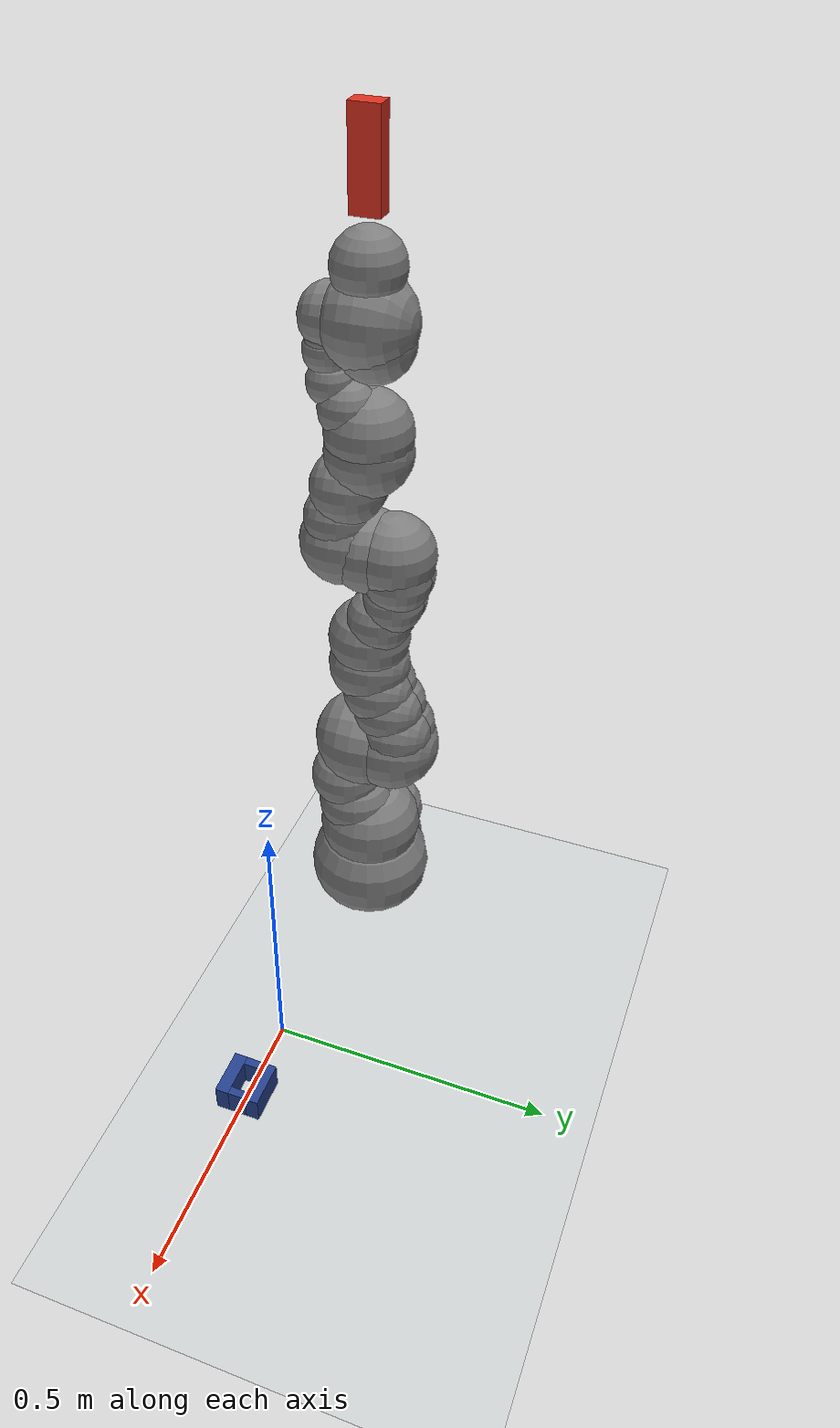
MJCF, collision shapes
<mujoco model="rect_peg_in_hole_iiwa_mesh_proxy_soft">

  <include file="iiwa14_peg.xml"/>

  <statistic center="0.05 0 0.35" extent="1.2"/>

  <visual>
    <global offwidth="1280" offheight="900" azimuth="-120" elevation="-20"/>
    <headlight ambient="0.35 0.35 0.35" diffuse="0.65 0.65 0.65" specular="0.1 0.1 0.1"/>
  </visual>

  <asset>
    <mesh name="rectangular_hole_mesh" file="rectangular_hole.obj"/>

    <texture name="checker" type="2d" builtin="checker"
             width="512" height="512"
             rgb1="0.92 0.92 0.88" rgb2="0.68 0.72 0.76"/>
    <material name="checker_mat" texture="checker" texrepeat="10 10" reflectance="0.15"/>
  </asset>

  <worldbody>
    <light name="key_light" pos="0.35 -0.55 1.0" dir="-0.35 0.55 -1"/>
    <camera name="extern" mode="fixed" pos="0 0 1" fovy="58"/>
    <geom name="floor"
          type="plane"
          pos="0 0 -0.026"
          size="0.8 0.8 0.01"
          contype="0"
          conaffinity="0"
          material="checker_mat"/>

    <body name="hole" pos="0.15 0 0" euler="0 0 1.5707963267948966">
      <geom name="hole_visual"
            type="mesh"
            mesh="rectangular_hole_mesh"
            pos="0 0 0"
            contype="0"
            conaffinity="0"
            rgba="0.68 0.73 0.82 0.35"/>

      <!--
        rectangular_hole.obj bounds:
        - outer half-widths: x=0.04 m, y=0.04 m
        - maximum opening envelope: x=0.0162 m, y=0.0252 m
        - height: z=0.05 m
      -->
      <geom name="hole_proxy_pos_x_collision"
            type="box"
            pos="0.0281 0 0.025"
            size="0.0119 0.04 0.025"
            contype="1"
            conaffinity="1"
            condim="3"
            friction="1.0 0.005 0.0001"
            solref="0.03 1"
            solimp="0 0.9 0.01 0.5 2"
            rgba="0.14 0.25 0.55 0.35"/>
      <geom name="hole_proxy_neg_x_collision"
            type="box"
            pos="-0.0281 0 0.025"
            size="0.0119 0.04 0.025"
            contype="1"
            conaffinity="1"
            condim="3"
            friction="1.0 0.005 0.0001"
            solref="0.03 1"
            solimp="0 0.9 0.01 0.5 2"
            rgba="0.14 0.25 0.55 0.35"/>
      <geom name="hole_proxy_pos_y_collision"
            type="box"
            pos="0 0.0326 0.025"
            size="0.0162 0.0074 0.025"
            contype="1"
            conaffinity="1"
            condim="3"
            friction="1.0 0.005 0.0001"
            solref="0.03 1"
            solimp="0 0.9 0.01 0.5 2"
            rgba="0.14 0.25 0.55 0.35"/>
      <geom name="hole_proxy_neg_y_collision"
            type="box"
            pos="0 -0.0326 0.025"
            size="0.0162 0.0074 0.025"
            contype="1"
            conaffinity="1"
            condim="3"
            friction="1.0 0.005 0.0001"
            solref="0.03 1"
            solimp="0 0.9 0.01 0.5 2"
            rgba="0.14 0.25 0.55 0.35"/>
    </body>
  </worldbody>
</mujoco>

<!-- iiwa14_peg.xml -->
<mujoco model="iiwa14_peg">
  <compiler angle="radian" meshdir="kuka_iiwa_14/meshes" autolimits="true"/>

  <option timestep="0.002"
          solver="Newton"
          iterations="10"
          ls_iterations="50"
          gravity="0 0 0"
          cone="pyramidal"/>

  <custom>
    <numeric data="240" name="max_contact_points"/>
    <numeric data="240" name="max_geom_pairs"/>
  </custom>

  <default>
    <default class="iiwa">
      <material specular="0.5" shininess="0.25"/>
      <joint axis="0 0 1"/>
      <general gaintype="fixed" biastype="affine" gainprm="2000" biasprm="0 -2000 -200"/>
      <default class="joint1">
        <joint range="-2.96706 2.96706"/>
        <general ctrlrange="-2.96706 2.96706"/>
        <default class="joint2">
          <joint range="-2.0944 2.0944"/>
          <general ctrlrange="-2.0944 2.0944"/>
        </default>
      </default>
      <default class="joint3">
        <joint range="-3.05433 3.05433"/>
        <general ctrlrange="-3.05433 3.05433"/>
      </default>
      <default class="visual">
        <geom type="mesh" contype="0" conaffinity="0" group="2" material="gray"/>
      </default>
      <default class="collision">
        <geom group="3" contype="0" conaffinity="0"/>
      </default>
      <site size="0.001" rgba="1 0 0 1" group="4"/>
    </default>
  </default>

  <asset>
    <material class="iiwa" name="gray" rgba="0.4 0.4 0.4 1"/>
    <material class="iiwa" name="light_gray" rgba="0.6 0.6 0.6 1"/>
    <material class="iiwa" name="black" rgba="0 0 0 1"/>
    <material class="iiwa" name="orange" rgba="1 0.423529 0.0392157 1"/>

    <mesh file="link_0.obj"/>
    <mesh file="link_1.obj"/>
    <mesh file="link_2_orange.obj"/>
    <mesh file="link_2_grey.obj"/>
    <mesh file="link_3.obj"/>
    <mesh file="band.obj"/>
    <mesh file="kuka.obj"/>
    <mesh file="link_4_orange.obj"/>
    <mesh file="link_4_grey.obj"/>
    <mesh file="link_5.obj"/>
    <mesh file="link_6_orange.obj"/>
    <mesh file="link_6_grey.obj"/>
    <mesh file="link_7.obj"/>
    <mesh name="rectangular_peg_mesh" file="rectangular_peg.obj"/>
  </asset>

  <worldbody>
    <light name="top" pos="0 0 2" mode="trackcom"/>
    <body name="base" childclass="iiwa" pos="-0.45 0 0">
      <inertial mass="5" pos="-0.1 0 0.07" diaginertia="0.05 0.06 0.03"/>
      <geom class="visual" mesh="link_0"/>
      <geom class="collision" size="0.12" pos="0 0 0.03"/>
      <geom class="collision" size="0.08" pos="-0.08 0 0.103"/>
      <geom class="collision" size="0.08" pos="-0.08 0 0.04"/>
      <geom class="collision" size="0.1" pos="0 0 0.14"/>
      <body name="link1" pos="0 0 0.1575">
        <inertial mass="5.76" pos="0 -0.03 0.12" diaginertia="0.0333 0.033 0.0123"/>
        <joint name="joint1" class="joint1"/>
        <geom class="visual" mesh="link_1"/>
        <geom class="collision" size="0.08" pos="0 0 -0.0005"/>
        <geom class="collision" size="0.075" pos="0.01 -0.025 0.0425"/>
        <geom class="collision" size="0.075" pos="-0.01 -0.025 0.0425"/>
        <geom class="collision" size="0.07" pos="0.01 -0.045 0.1025"/>
        <geom class="collision" size="0.07" pos="-0.01 -0.045 0.1025"/>
        <body name="link2" pos="0 0 0.2025" quat="0 0 1 1">
          <inertial mass="6.35" pos="0.0003 0.059 0.042" diaginertia="0.0305 0.0304 0.011" quat="0 0 1 1"/>
          <joint name="joint2" class="joint2"/>
          <geom class="visual" material="orange" mesh="link_2_orange"/>
          <geom class="visual" mesh="link_2_grey"/>
          <geom class="collision" size="0.095" pos="0 0 -0.01"/>
          <geom class="collision" size="0.09" pos="0 0 0.045"/>
          <geom class="collision" size="0.07" pos="-0.01 0.04 0.054"/>
          <geom class="collision" size="0.065" pos="-0.01 0.09 0.04"/>
          <geom class="collision" size="0.065" pos="-0.01 0.13 0.02"/>
          <geom class="collision" size="0.07" pos="0.01 0.04 0.054"/>
          <geom class="collision" size="0.065" pos="0.01 0.09 0.04"/>
          <geom class="collision" size="0.065" pos="0.01 0.13 0.02"/>
          <geom class="collision" size="0.075" pos="0 0.18 0"/>
          <body name="link3" pos="0 0.2045 0" quat="0 0 1 1">
            <inertial mass="3.5" pos="0 0.03 0.13" diaginertia="0.025 0.0238 0.0076"/>
            <joint name="joint3" class="joint1"/>
            <geom class="visual" mesh="link_3"/>
            <geom class="visual" material="light_gray" mesh="band"/>
            <geom class="visual" material="black" mesh="kuka"/>
            <geom class="collision" size="0.075" pos="0 0 0.0355"/>
            <geom class="collision" size="0.06" pos="0.01 0.023 0.0855"/>
            <geom class="collision" size="0.055" pos="0.01 0.048 0.1255"/>
            <geom class="collision" size="0.06" pos="0.01 0.056 0.1755"/>
            <geom class="collision" size="0.06" pos="-0.01 0.023 0.0855"/>
            <geom class="collision" size="0.055" pos="-0.01 0.048 0.1255"/>
            <geom class="collision" size="0.06" pos="-0.01 0.056 0.1755"/>
            <geom class="collision" size="0.075" pos="0 0.045 0.2155"/>
            <geom class="collision" size="0.075" pos="0 0 0.2155"/>
            <body name="link4" pos="0 0 0.2155" quat="1 1 0 0">
              <inertial mass="3.5" pos="0 0.067 0.034" diaginertia="0.017 0.0164 0.006" quat="1 1 0 0"/>
              <joint name="joint4" class="joint2"/>
              <geom class="visual" material="orange" mesh="link_4_orange"/>
              <geom class="visual" mesh="link_4_grey"/>
              <geom class="collision" size="0.078" pos="0 0.01 0.046"/>
              <geom class="collision" size="0.06" pos="0.01 0.06 0.052"/>
              <geom class="collision" size="0.065" pos="0.01 0.12 0.034"/>
              <geom class="collision" size="0.06" pos="-0.01 0.06 0.052"/>
              <geom class="collision" size="0.065" pos="-0.01 0.12 0.034"/>
              <geom class="collision" size="0.075" pos="0 0.184 0"/>
              <body name="link5" pos="0 0.1845 0" quat="0 0 1 1">
                <inertial mass="3.5" pos="0.0001 0.021 0.076" diaginertia="0.01 0.0087 0.00449"/>
                <joint name="joint5" class="joint1"/>
                <geom class="visual" mesh="link_5"/>
                <geom class="visual" material="light_gray" mesh="band"/>
                <geom class="visual" material="black" mesh="kuka"/>
                <geom class="collision" size="0.075" pos="0 0 0.0335"/>
                <geom class="collision" size="0.05" pos="-0.012 0.031 0.0755"/>
                <geom class="collision" size="0.05" pos="0.012 0.031 0.0755"/>
                <geom class="collision" size="0.04" pos="-0.012 0.06 0.1155"/>
                <geom class="collision" size="0.04" pos="0.012 0.06 0.1155"/>
                <geom class="collision" size="0.04" pos="-0.01 0.065 0.1655"/>
                <geom class="collision" size="0.04" pos="0.01 0.065 0.1655"/>
                <geom class="collision" size="0.035" pos="-0.012 0.065 0.1855"/>
                <geom class="collision" size="0.035" pos="0.012 0.065 0.1855"/>
                <body name="link6" pos="0 0 0.2155" quat="1 1 0 0">
                  <inertial mass="1.8" pos="0 0.0006 0.0004" diaginertia="0.0049 0.0047 0.0036" quat="1 1 0 0"/>
                  <joint name="joint6" class="joint2"/>
                  <geom class="visual" material="orange" mesh="link_6_orange"/>
                  <geom class="visual" mesh="link_6_grey"/>
                  <geom class="collision" size="0.055" pos="0 0 -0.059"/>
                  <geom class="collision" size="0.065" pos="0 -0.03 0.011"/>
                  <geom class="collision" size="0.08"/>
                  <body name="link7" pos="0 0.081 0" quat="0 0 1 1">
                    <inertial mass="1.2" pos="0 0 0.02" diaginertia="0.001 0.001 0.001"/>
                    <joint name="joint7" class="joint3"/>
                    <geom class="visual" mesh="link_7"/>
                    <geom class="collision" size="0.06" pos="0 0 0.001"/>
                    <site pos="0 0 0.045" name="attachment_site"/>
                    <body name="peg"
                          pos="0 0 0.075"
                          euler="3.141592653589793 0 1.5707963267948966">
                      <geom name="peg_visual"
                            type="mesh"
                            mesh="rectangular_peg_mesh"
                            euler="1.5707963267948966 0 0"
                            density="0"
                            contype="0"
                            conaffinity="0"
                            rgba="0.95 0.58 0.44 0.35"/>
                      <geom name="peg_proxy_collision"
                            type="box"
                            pos="0 0 -0.075"
                            size="0.025 0.016 0.075"
                            mass="0.49468"
                            contype="1"
                            conaffinity="1"
                            condim="3"
                            friction="1.0 0.005 0.0001"
                            solref="0.03 1"
                            solimp="0 0.9 0.01 0.5 2"
                            rgba="0.85 0.18 0.12 0.45"/>
                      <site name="probe_site"
                            pos="0 0 -0.15"
                            size="0.006"
                            rgba="0 1 0 1"/>
                      <site name="peg_mount_site"
                            pos="0 0 0.03"
                            size="0.008"
                            rgba="0 0.4 1 1"/>
                      <camera name="wrist"
                              pos="0 0.052 0"
                              euler="0 0 0"
                              fovy="58"/>
                    </body>
                  </body>
                </body>
              </body>
            </body>
          </body>
        </body>
      </body>
    </body>
  </worldbody>

  <contact>
    <exclude body1="base" body2="link1"/>
    <exclude body1="base" body2="link2"/>
    <exclude body1="base" body2="link3"/>
    <exclude body1="link1" body2="link3"/>
    <exclude body1="link3" body2="link5"/>
    <exclude body1="link4" body2="link7"/>
    <exclude body1="link5" body2="link7"/>
  </contact>

  <actuator>
    <general name="actuator1" joint="joint1" class="joint1"/>
    <general name="actuator2" joint="joint2" class="joint2"/>
    <general name="actuator3" joint="joint3" class="joint1"/>
    <general name="actuator4" joint="joint4" class="joint2"/>
    <general name="actuator5" joint="joint5" class="joint1"/>
    <general name="actuator6" joint="joint6" class="joint2"/>
    <general name="actuator7" joint="joint7" class="joint3"/>
  </actuator>

  <keyframe>
    <key name="home" qpos="0 0.785398 0 -1.5708 0 0 0" ctrl="0 0.785398 0 -1.5708 0 0 0"/>
  </keyframe>
</mujoco>
